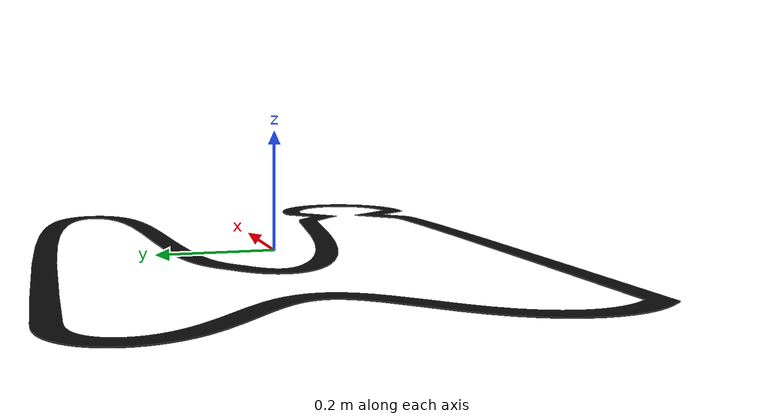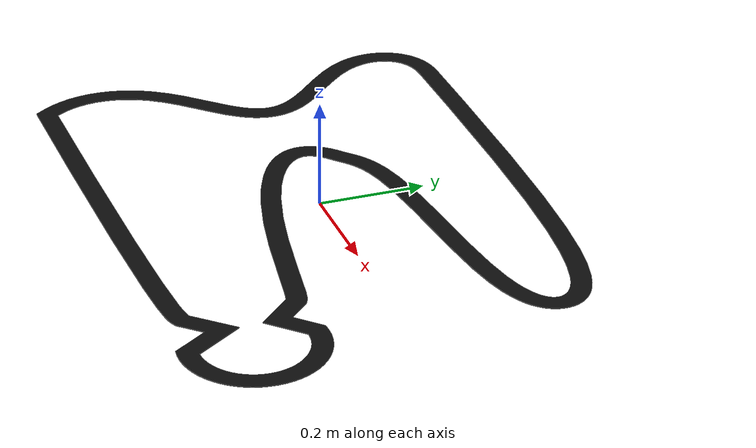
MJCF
<mujoco model="MediumCompTrack">
  <asset>
    <mesh name="MediumCompTrack" file="../../objects/tracks/MediumCompTrack.obj" inertia="shell"
          scale="7.5 7.5 7.5"/>
  </asset>
  <worldbody>
    <geom name="line_MediumCompTrack" type="mesh" mesh="MediumCompTrack" quat="1 0 0 0"
          pos="0.0112 0.1076 0.002"
          contype="0" conaffinity="0" group="2" rgba="0.05 0.05 0.05 1"/>
  </worldbody>
</mujoco>
